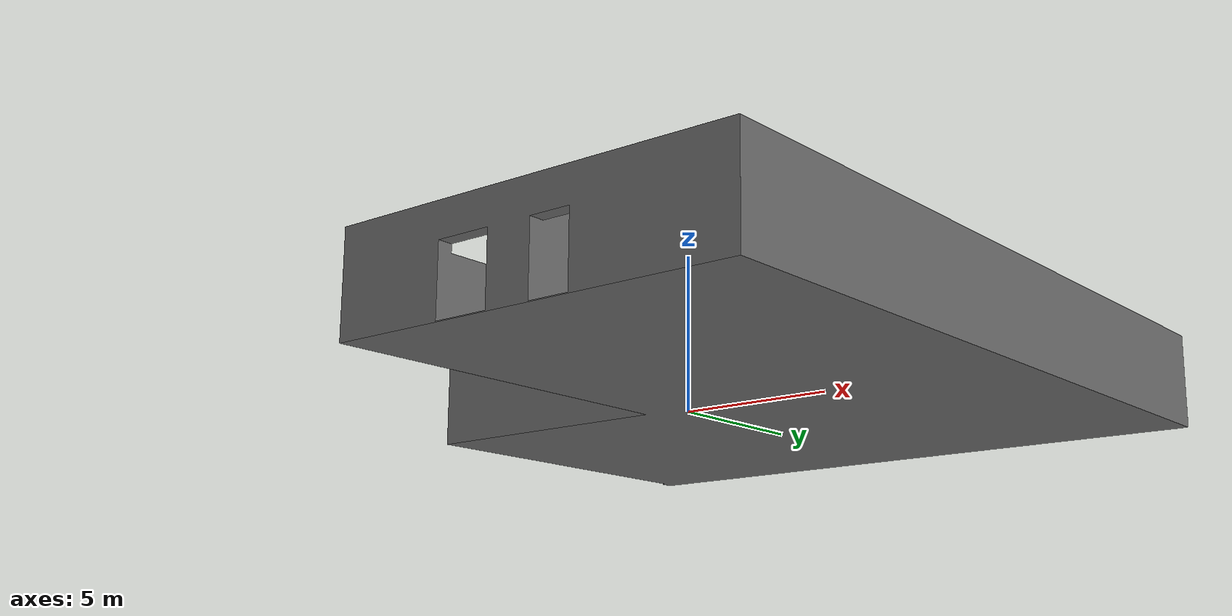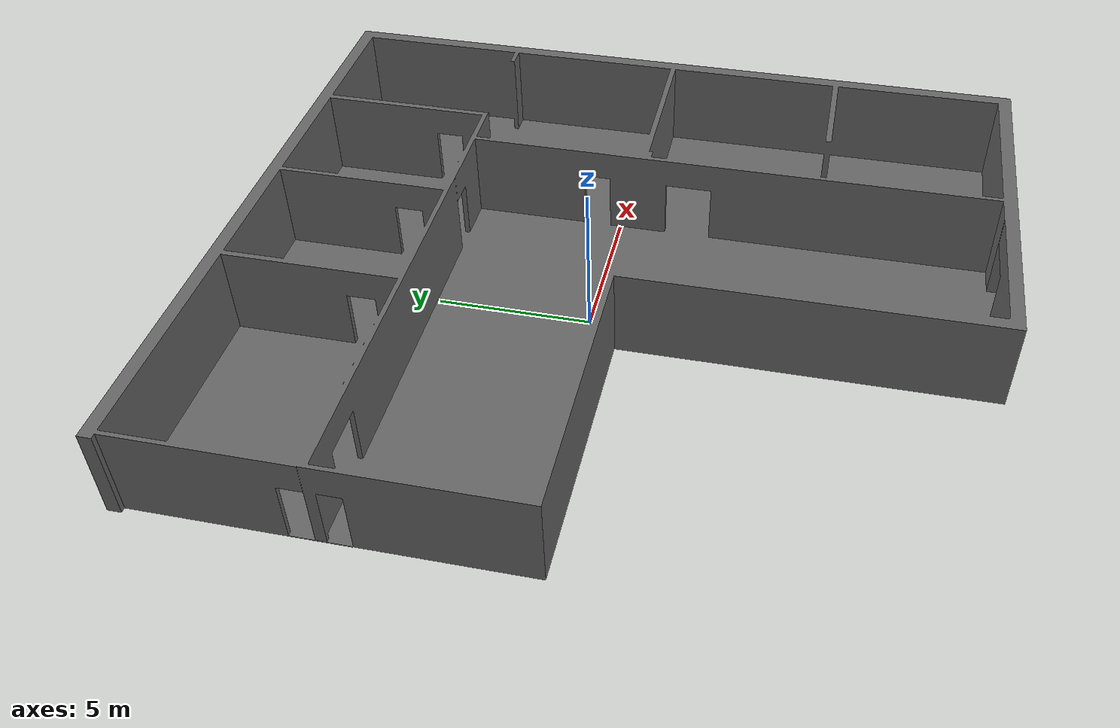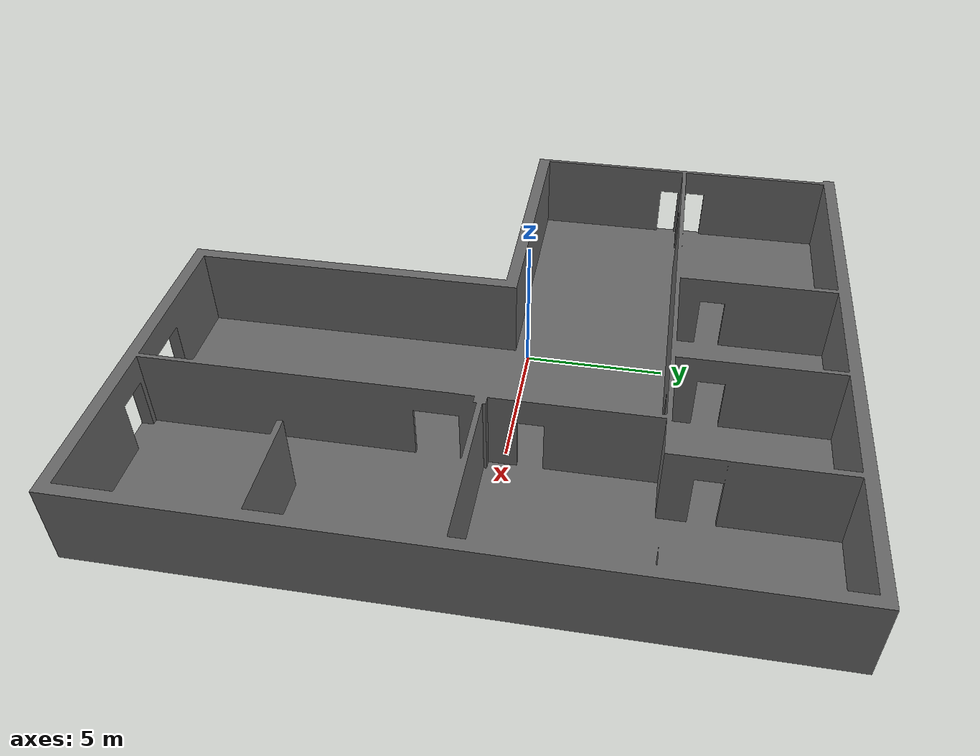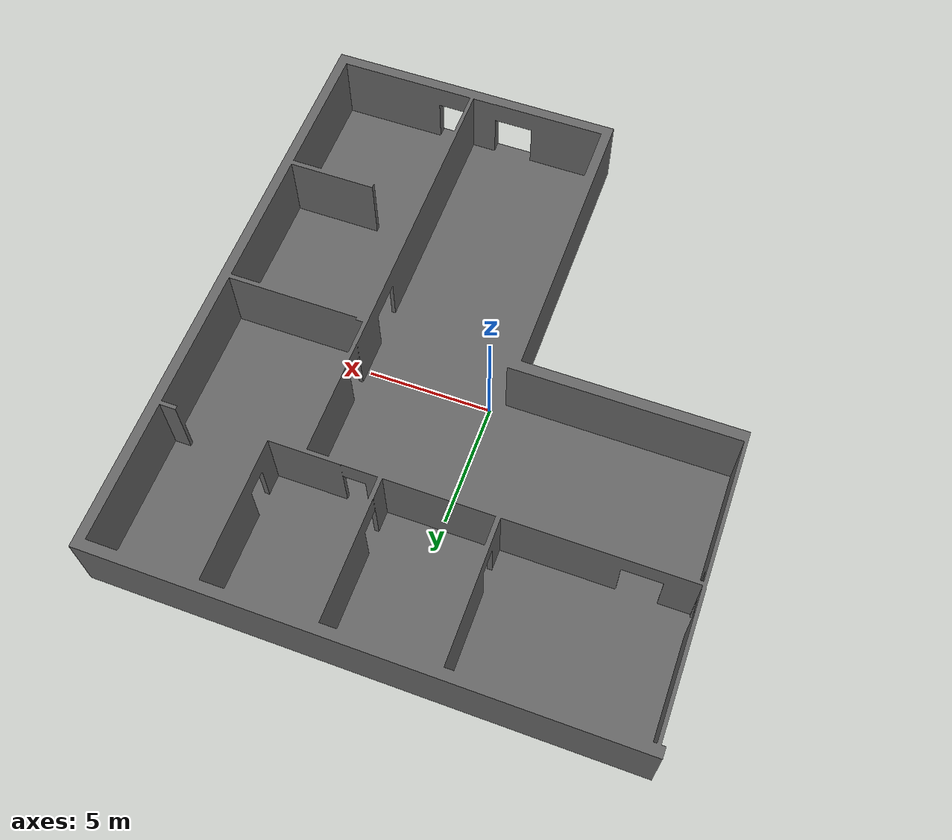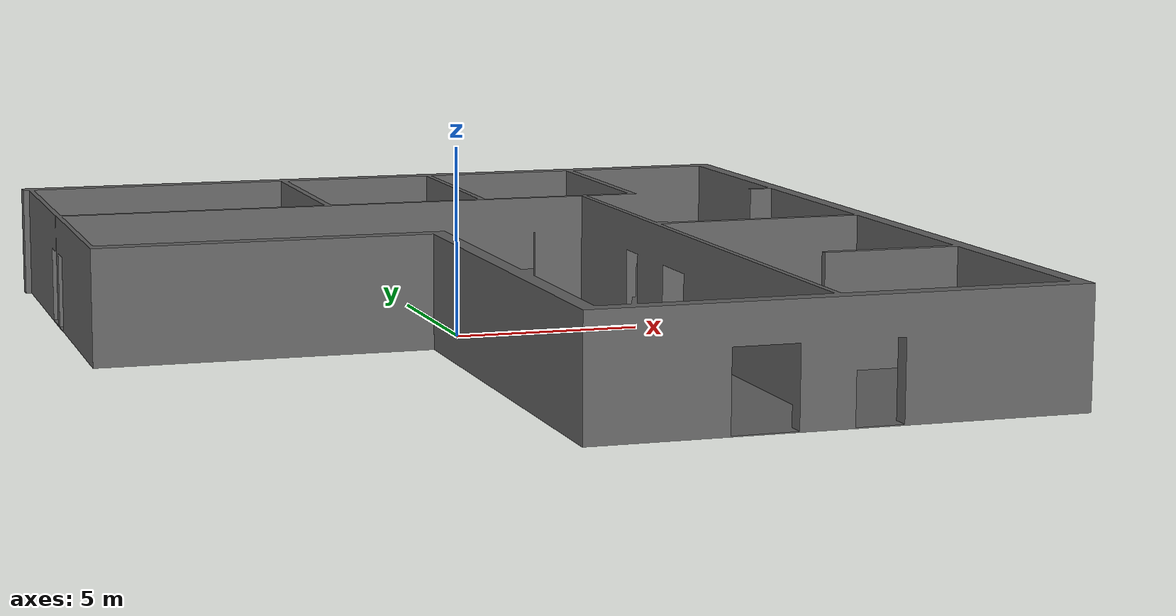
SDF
<?xml version='1.0'?>
<sdf version='1.6'>
  <model name='control_lab'>
    <link name='link'>
      <self_collide>0</self_collide>
      <enable_wind>0</enable_wind>
      <kinematic>0</kinematic>
      <pose frame=''>-5 12 -0.1 0 0 0</pose>
      <visual name='control_lab_visual'>
        <pose frame=''>0 0 0 0 0 0</pose>
        <geometry>
          <mesh>
            <uri>/home/jacob/TIAGo-hamr-simulation/models/control_lab_doorways.dae</uri>
            <scale>1 1 1</scale>
          </mesh>
        </geometry>
        <material>
          <ambient>0.4 0.4 0.4 1</ambient>
          <diffuse>0.4 0.4 0.4 1</diffuse>
          <specular>0.1 0.1 0.1 1</specular>
          <emissive>0 0 0 0</emissive>
        </material>
        <transparency>0</transparency>
        <cast_shadows>1</cast_shadows>
      </visual>
      <collision name='control_lab_collision'>
        <laser_retro>0</laser_retro>
        <max_contacts>10</max_contacts>
        <pose frame=''>0 0 0 0 0 0</pose>
        <geometry>
          <mesh>
            <uri>/home/jacob/TIAGo-hamr-simulation/models/control_lab_doorways.dae</uri>
            <scale>1 1 1</scale>
          </mesh>
        </geometry>
        <surface>
          <friction>
            <ode>
              <mu>1</mu>
              <mu2>1</mu2>
              <fdir1>0 0 0</fdir1>
              <slip1>0</slip1>
              <slip2>0</slip2>
            </ode>
            <torsional>
              <coefficient>1</coefficient>
              <patch_radius>0</patch_radius>
              <surface_radius>0</surface_radius>
              <use_patch_radius>1</use_patch_radius>
              <ode>
                <slip>0</slip>
              </ode>
            </torsional>
          </friction>
          <bounce>
            <restitution_coefficient>0</restitution_coefficient>
            <threshold>1e+06</threshold>
          </bounce>
          <contact>
            <collide_without_contact>0</collide_without_contact>
            <collide_without_contact_bitmask>1</collide_without_contact_bitmask>
            <collide_bitmask>1</collide_bitmask>
            <ode>
              <soft_cfm>0</soft_cfm>
              <soft_erp>0.2</soft_erp>
              <kp>1e+13</kp>
              <kd>1</kd>
              <max_vel>0.01</max_vel>
              <min_depth>0</min_depth>
            </ode>
            <bullet>
              <split_impulse>1</split_impulse>
              <split_impulse_penetration_threshold>-0.01</split_impulse_penetration_threshold>
              <soft_cfm>0</soft_cfm>
              <soft_erp>0.2</soft_erp>
              <kp>1e+13</kp>
              <kd>1</kd>
            </bullet>
          </contact>
        </surface>
      </collision>
    </link>
    <static>1</static>
    <allow_auto_disable>1</allow_auto_disable>
  </model>
</sdf>
